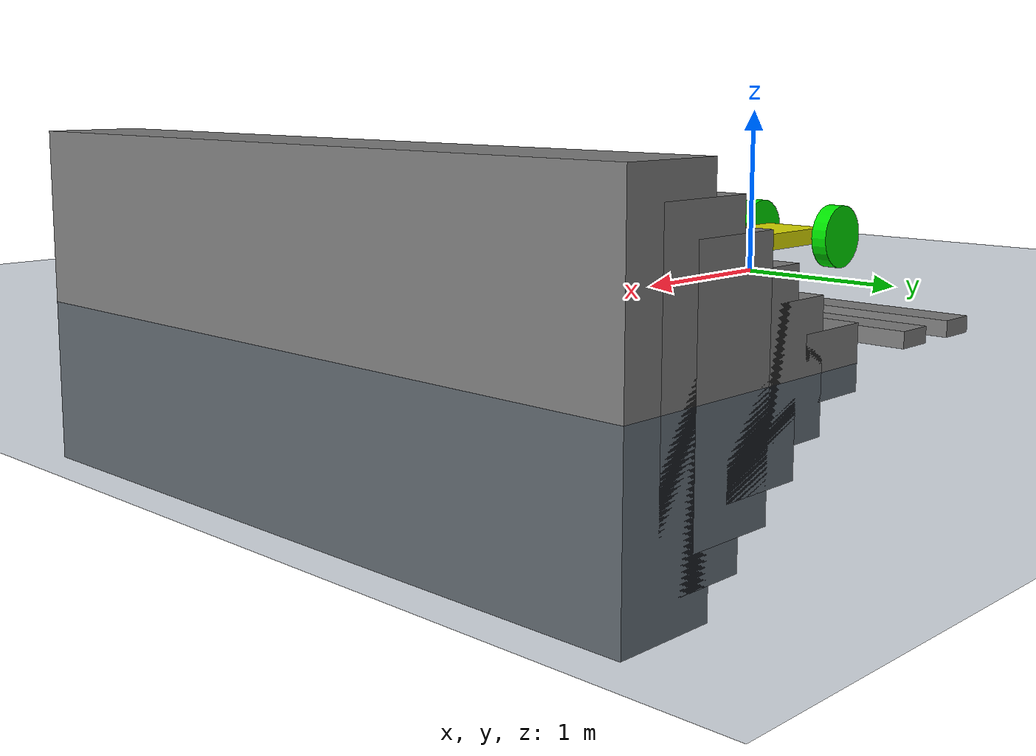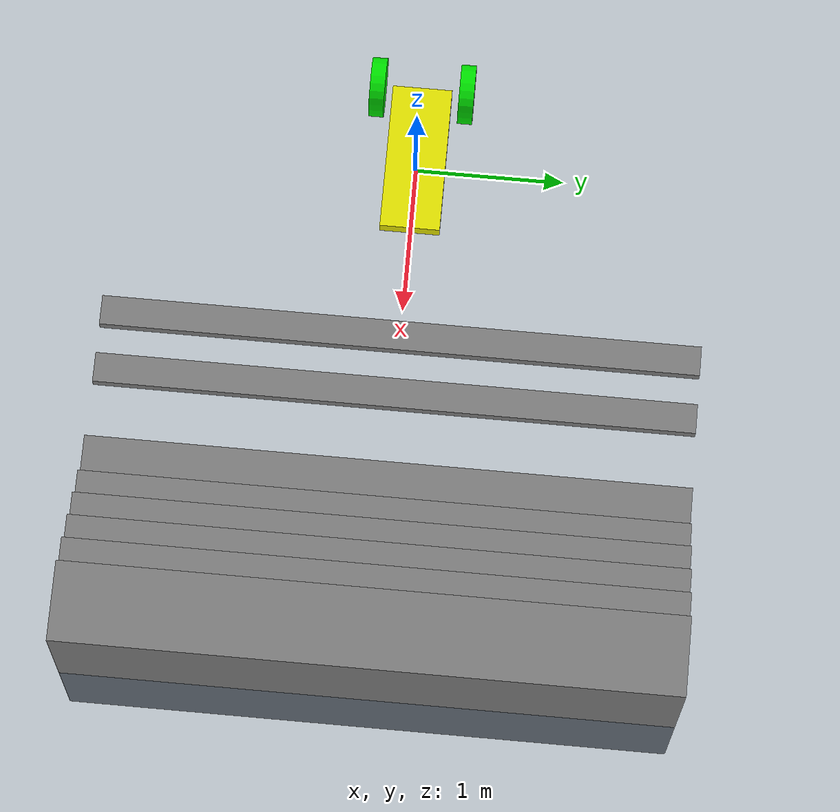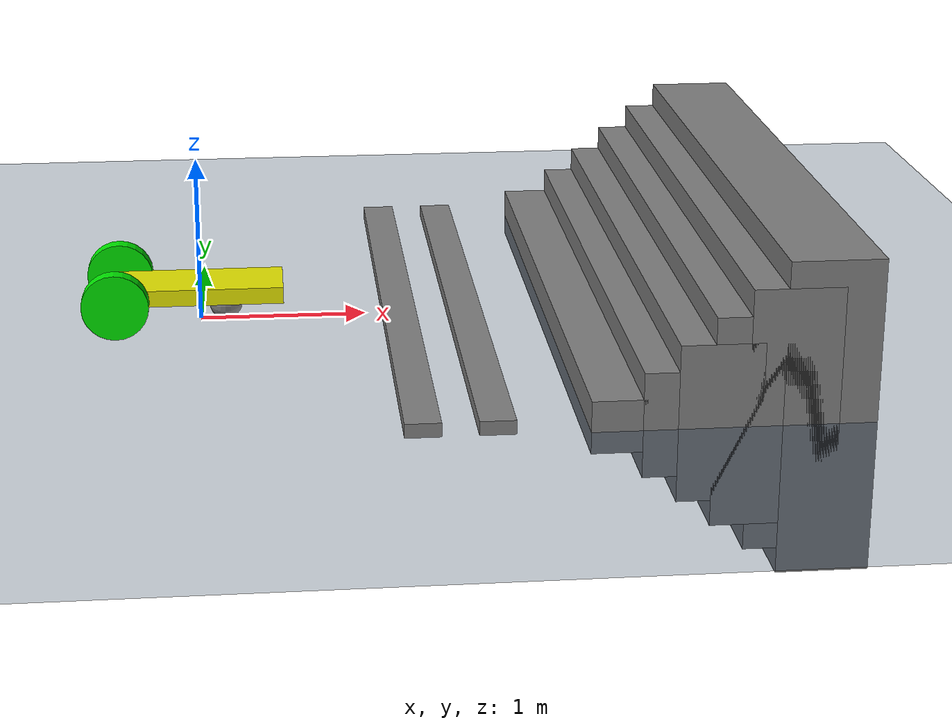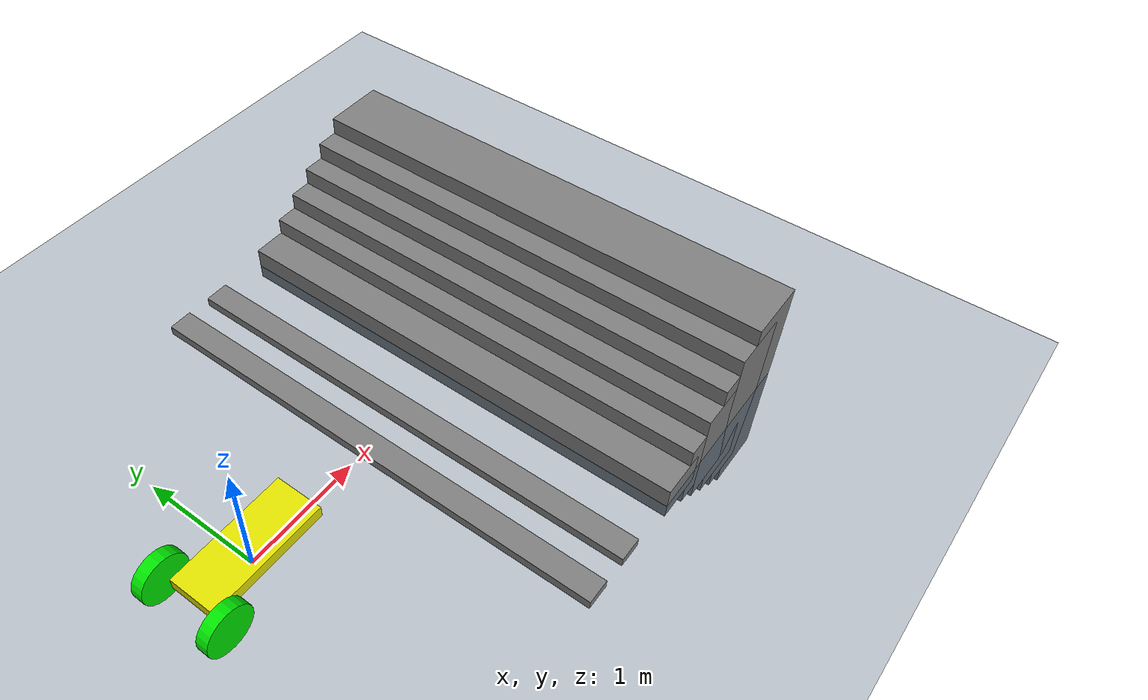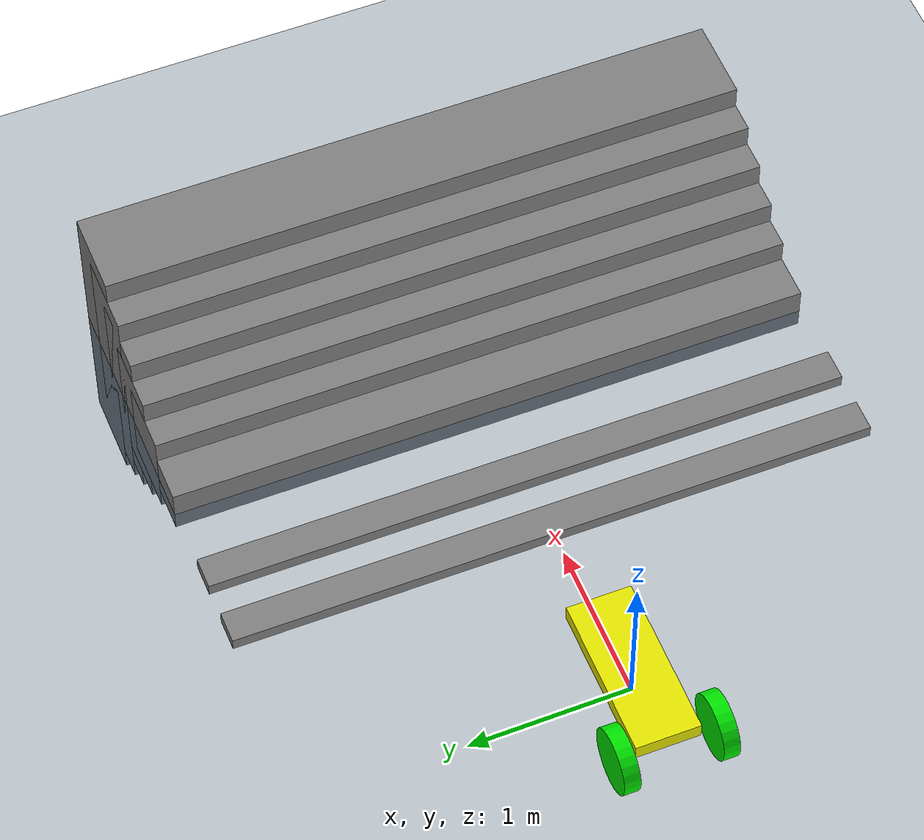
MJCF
<mujoco model="go2 scene">
  <include file="2wheel_robot.xml"/>

  <statistic center="0 0 0.1" extent="0.8"/>

  <visual>
    <headlight diffuse="0.6 0.6 0.6" ambient="0.3 0.3 0.3" specular="0 0 0"/>
    <rgba haze="0.15 0.25 0.35 1"/>
    <global azimuth="-130" elevation="-20"/>
  </visual>

  <asset>
    <texture type="skybox" builtin="gradient" rgb1="0.3 0.5 0.7" rgb2="0 0 0" width="512" height="3072"/>
    <texture type="2d" name="groundplane" builtin="checker" mark="edge" rgb1="0.2 0.3 0.4" rgb2="0.1 0.2 0.3"
      markrgb="0.8 0.8 0.8" width="300" height="300"/>
    <material name="groundplane" texture="groundplane" texuniform="true" texrepeat="5 5" reflectance="0.2"/>
  </asset>

  <worldbody>
    <light pos="0 0 1.5" dir="0 0 -1" directional="true"/>
    <geom name="floor" size="0 0 0.05" type="plane" material="groundplane"/>

    <geom pos="1.2 0 0.04" type="box"  size="0.1 2 0.04" quat="1.0 0 0 0"/>
    <geom pos="1.6 0 0.04" type="box"  size="0.1 2 0.04" quat="1.0 0 0 0"/>

    <geom pos="2.3 0 0.02" type="box"  size="0.2 2 0.15" quat="1.0 0 0 0"/>
    <geom pos="2.6 0 0.02" type="box"  size="0.22 2 0.3" quat="1.0 0 0 0"/>
    <geom pos="2.8 0 0.02" type="box"  size="0.23 2 0.45" quat="1.0 0 0 0"/>
    <geom pos="3 0 0.02" type="box"  size="0.24 2 0.6" quat="1.0 0 0 0"/>
    <geom pos="3.2 0 0.02" type="box"  size="0.25 2 0.75" quat="1.0 0 0 0"/>
    <geom pos="3.4 0 0.02" type="box"  size="0.26 2 0.9" quat="1.0 0 0 0"/>
  </worldbody>
</mujoco>

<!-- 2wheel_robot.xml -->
<mujoco>
	<option gravity="0 0 -9.81" />
  <visual>
    <headlight diffuse="0.6 0.6 0.6" ambient="0.3 0.3 0.3" specular="0 0 0"/>
    <rgba haze="0.15 0.25 0.35 1"/>
    <global azimuth="-130" elevation="-20"/>
  </visual>
	<worldbody>
        <light diffuse=".5 .5 .5" pos="0 0 3" dir="0 0 -1"/>
		<body name = "chassis" pos="0 0 0.2" euler='0 90 0'>
			<joint type="free"/>
			<geom type="box" size=".05 .2 .5" rgba=".9 .9 0 1"/>
			<!-- This code is for ball cast. -->
			<site name="marker" pos = "0.1 0 0.15" size="0.1" />
			<body name="left-tire" pos="0 0.3 -0.5" euler='90 0 0'>
				<joint name = "left-wheel" type="hinge" axis="0 0 -1"/>
				<geom type="cylinder" size=".2 0.05" rgba="0 .9 0 1"/>
			</body>
			<body name="right-tire" pos="0 -0.3 -0.5" euler='90 0 0'>
				<joint name = "right-wheel" type="hinge" axis="0 0 -1"/>
				<geom type="cylinder" size=".2 0.05" rgba="0 .9 0 1"/>
			</body>
		</body>
	</worldbody>
	<sensor>
		<framepos objtype="site" objname="marker"/>
	</sensor>
	<actuator>
		<velocity name="left-velocity-servo" joint="left-wheel" kv="100"/>
		<velocity name="right-velocity-servo" joint="right-wheel" kv="100"/>
	</actuator>
</mujoco>
